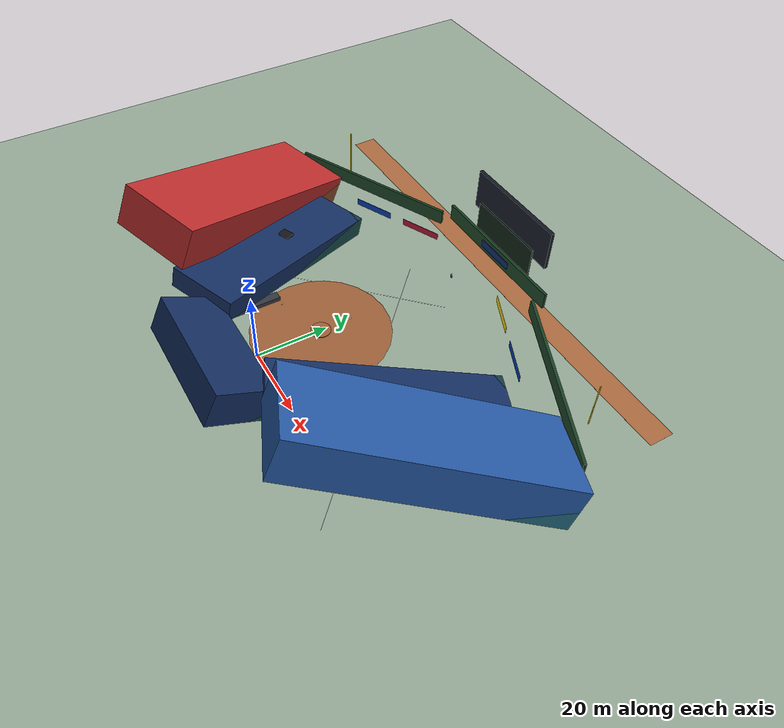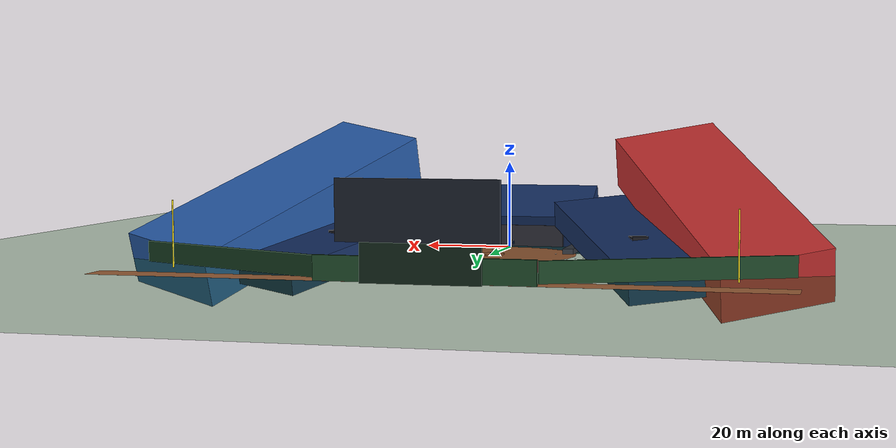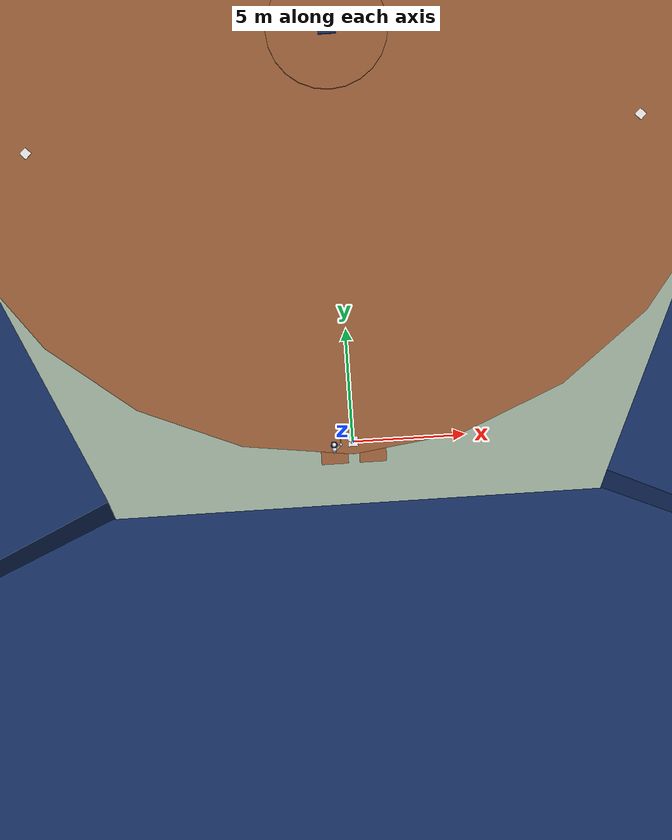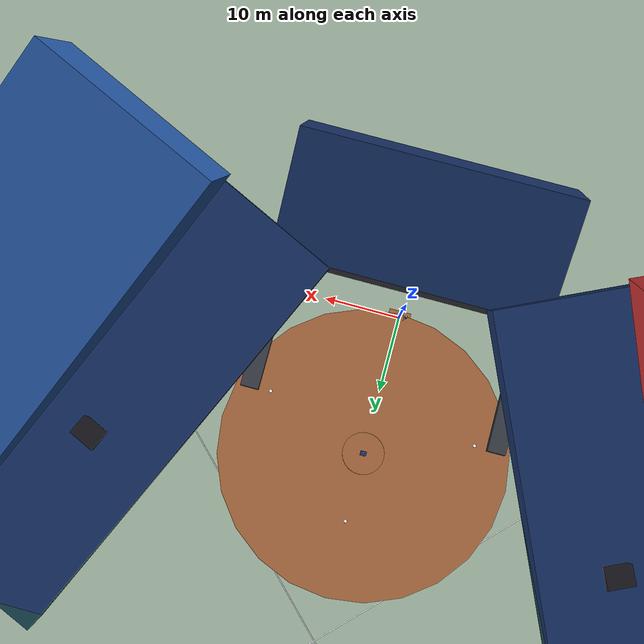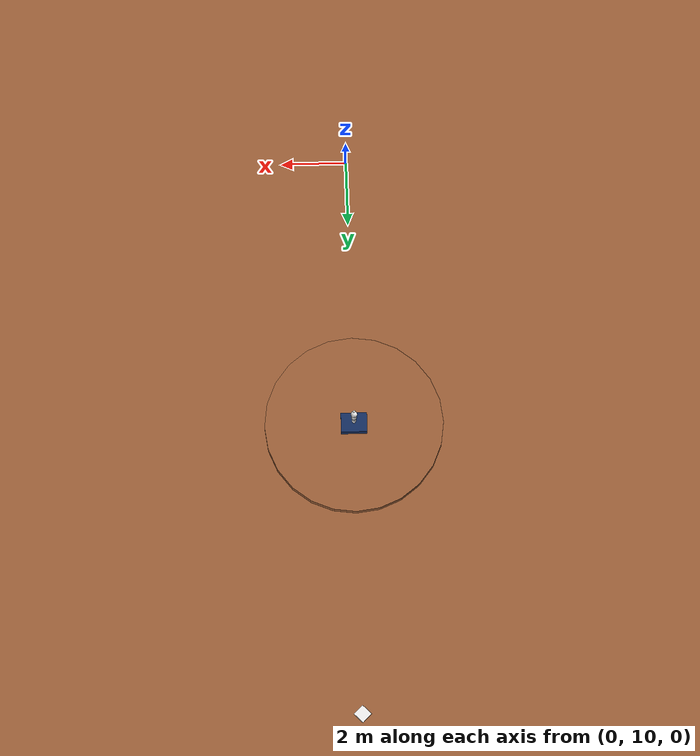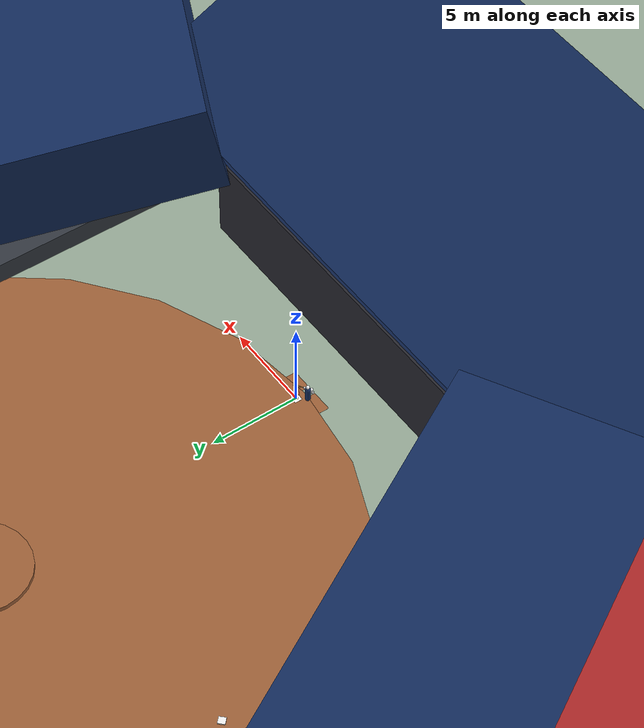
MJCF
<mujoco model="stadium_3d_baseball_pro">
  <compiler angle="degree" coordinate="local" inertiafromgeom="true"/>

  <option gravity="0 0 -9.81" timestep="0.002" integrator="RK4">
    <flag constraint="enable" energy="enable"/>
  </option>

  <default>
    <joint limited="false" damping="0.01"/>
    <geom condim="3" friction="0.5 0.1 0.1" solref="0.004 1" solimp="0.9 0.95 0.001" margin="0.001"/>
  </default>

  <asset>
    <!-- Sky & Textures -->
    <texture name="sky" type="skybox" builtin="gradient" rgb1="0.3 0.55 0.9" rgb2="0.05 0.12 0.3" width="512" height="512"/>
    <texture name="grass_tex" type="2d" builtin="checker" rgb1="0.12 0.44 0.12" rgb2="0.09 0.36 0.09" width="256" height="256"/>
    <texture name="dirt_tex" type="2d" builtin="flat" rgb1="0.62 0.38 0.22" width="128" height="128"/>
    <texture name="wood_tex" type="2d" builtin="flat" rgb1="0.82 0.62 0.32" width="128" height="128"/>

    <!-- Materials -->
    <material name="grass" texture="grass_tex" texrepeat="35 35" reflectance="0.05"/>
    <material name="infield_dirt_mat" texture="dirt_tex" reflectance="0.05"/>
    <material name="warning_track_mat" rgba="0.68 0.42 0.25 1" reflectance="0.05"/>
    <material name="wood" texture="wood_tex" reflectance="0.3"/>
    <material name="ball_mat" rgba="0.98 0.98 0.95 1" reflectance="0.4"/>
    <material name="plate_mat" rgba="0.95 0.95 0.95 1"/>
    <material name="foul_line_mat" rgba="1 1 1 0.9"/>
    <material name="foul_pole_mat" rgba="0.95 0.85 0.1 1"/>
    <material name="strike_zone_mat" rgba="1 0.15 0.15 0.22"/>

    <!-- Stadium Materials -->
    <material name="fence_mat" rgba="0.1 0.25 0.14 1"/>
    <material name="batters_eye_mat" rgba="0.05 0.12 0.08 1"/> <!-- Dark Matte Centerfield Batter's Eye -->
    <material name="backstop_mat" rgba="0.15 0.15 0.18 1"/>

    <!-- Outfield Sponsor Ad Billboards -->
    <material name="ad_board_samsung" rgba="0.02 0.22 0.65 1"/> <!-- Blue Samsung Ad -->
    <material name="ad_board_lg" rgba="0.65 0.08 0.2 1"/>      <!-- Red LG Ad -->
    <material name="ad_board_hyundai" rgba="0.05 0.15 0.4 1"/>  <!-- Navy Hyundai Ad -->
    <material name="ad_board_kakao" rgba="0.95 0.82 0.05 1"/>   <!-- Yellow Kakao Ad -->
    <material name="scoreboard_mat" rgba="0.08 0.1 0.14 1"/>   <!-- Giant Centerfield Scoreboard -->
    <material name="scoreboard_screen" rgba="0.15 0.85 0.35 1"/>

    <!-- Seating Bleachers & Entry Tunnels -->
    <material name="seats_blue" rgba="0.15 0.35 0.65 1"/>
    <material name="seats_navy" rgba="0.08 0.18 0.38 1"/>
    <material name="seats_red" rgba="0.75 0.18 0.18 1"/>
    <material name="concrete_concourse" rgba="0.45 0.48 0.52 1"/>
    <material name="entry_tunnel" rgba="0.08 0.08 0.1 1"/>     <!-- Dark Portal Interior -->
    <material name="dugout_roof" rgba="0.2 0.22 0.25 1"/>
  </asset>

  <worldbody>
    <!-- Lighting: Realistic Stadium Floodlights -->
    <light name="light_main" pos="0 25 35" dir="0 -0.5 -1" directional="true" diffuse="0.9 0.9 0.95" specular="0.3 0.3 0.3"/>
    <light name="light_left" pos="-35 50 30" dir="0.5 -0.5 -1" directional="true" diffuse="0.6 0.6 0.65"/>
    <light name="light_right" pos="35 50 30" dir="-0.5 -0.5 -1" directional="true" diffuse="0.6 0.6 0.65"/>

    <!-- Outfield Grass Surface -->
    <geom name="outfield_grass" type="plane" size="130 130 0.1" pos="0 35 0" material="grass"/>

    <!-- Infield Pitcher's Mound & Plate -->
    <geom name="pitcher_mound" type="cylinder" size="2.74 0.25" pos="0 18.44 0" material="infield_dirt_mat"/>
    <geom name="pitcher_rubber" type="box" size="0.30 0.07 0.02" pos="0 18.44 0.26" material="plate_mat"/>

    <!-- Infield Diamond Base Paths -->
    <geom name="path_home_1st" type="box" size="0.9 9.7 0.003" pos="9.7 9.7 0.003" euler="0 0 -45" material="infield_dirt_mat"/>
    <geom name="path_home_3rd" type="box" size="0.9 9.7 0.003" pos="-9.7 9.7 0.003" euler="0 0 45" material="infield_dirt_mat"/>
    <geom name="path_1st_2nd" type="box" size="0.9 9.7 0.003" pos="9.7 27.7 0.003" euler="0 0 45" material="infield_dirt_mat"/>
    <geom name="path_3rd_2nd" type="box" size="0.9 9.7 0.003" pos="-9.7 27.7 0.003" euler="0 0 -45" material="infield_dirt_mat"/>
    <geom name="infield_skin_dirt" type="cylinder" size="19.0 0.004" pos="0 18.44 0.004" material="infield_dirt_mat"/>

    <!-- Home Plate & Batter's Boxes -->
    <geom name="home_plate" type="box" size="0.216 0.216 0.01" pos="0 0 0.005" material="plate_mat"/>
    <geom name="left_batter_box" type="box" size="0.6 1.2 0.002" pos="-0.85 0.25 0.002" material="infield_dirt_mat"/>
    <geom name="right_batter_box" type="box" size="0.6 1.2 0.002" pos="0.85 0.25 0.002" material="infield_dirt_mat"/>

    <!-- Tee-Ball Stand -->
    <geom name="tee_stand_base" type="cylinder" size="0.1 0.02" pos="0 0 0.02" material="wood" contype="0" conaffinity="0"/>
    <geom name="tee_stand_pole" type="cylinder" size="0.02 0.48" pos="0 0 0.5" material="wood" contype="0" conaffinity="0"/>

    <!-- 3D Strike Zone Volume Visualization (Sensor Region) -->
    <geom name="strike_zone_box" type="box" size="0.216 0.01 0.30" pos="0 0 0.75" material="strike_zone_mat" contype="0" conaffinity="0"/>

    <!-- Bases (1st, 2nd, 3rd Base Bags) -->
    <geom name="base_1st" type="box" size="0.19 0.19 0.04" pos="13.72 13.72 0.04" euler="0 0 45" material="plate_mat"/>
    <geom name="base_2nd" type="box" size="0.19 0.19 0.04" pos="0 27.43 0.04" euler="0 0 45" material="plate_mat"/>
    <geom name="base_3rd" type="box" size="0.19 0.19 0.04" pos="-13.72 13.72 0.04" euler="0 0 45" material="plate_mat"/>

    <!-- 1st Base & 3rd Base Dugouts -->
    <geom name="dugout_1st_roof" type="box" size="1.2 8.0 0.6" pos="16.5 6.0 0.6" material="dugout_roof"/>
    <geom name="dugout_3rd_roof" type="box" size="1.2 8.0 0.6" pos="-16.5 6.0 0.6" material="dugout_roof"/>

    <!-- Outfield Warning Track & Curved Wall Fences -->
    <geom name="warning_track" type="box" size="70 3.5 0.004" pos="0 72 0.004" material="warning_track_mat"/>
    <geom name="fence_left_wall" type="box" size="26 0.4 2.2" pos="-45 60 2.2" euler="0 0 25" material="fence_mat"/>
    <geom name="fence_center_wall" type="box" size="22 0.4 2.5" pos="0 75 2.5" material="fence_mat"/>
    <geom name="fence_right_wall" type="box" size="26 0.4 2.2" pos="45 60 2.2" euler="0 0 -25" material="fence_mat"/>

    <!-- Outfield Sponsor Ad Billboards Mounted on Wall -->
    <geom name="ad_samsung" type="box" size="6.0 0.05 1.0" pos="-35 55.2 2.2" euler="0 0 25" material="ad_board_samsung"/>
    <geom name="ad_lg" type="box" size="6.0 0.05 1.0" pos="-20 62.2 2.2" euler="0 0 25" material="ad_board_lg"/>
    <geom name="ad_hyundai" type="box" size="6.0 0.05 1.2" pos="0 74.5 2.5" material="ad_board_hyundai"/>
    <geom name="ad_kakao" type="box" size="6.0 0.05 1.0" pos="20 62.2 2.2" euler="0 0 -25" material="ad_board_kakao"/>
    <geom name="ad_sponsor_right" type="box" size="6.0 0.05 1.0" pos="35 55.2 2.2" euler="0 0 -25" material="ad_board_samsung"/>

    <!-- Centerfield Giant Scoreboard & Batter's Eye -->
    <geom name="batters_eye" type="box" size="12 0.2 6.0" pos="0 77 6.0" material="batters_eye_mat"/>
    <geom name="jumbo_scoreboard" type="box" size="16 0.5 6.0" pos="0 79 14.0" material="scoreboard_mat"/>
    <geom name="scoreboard_display" type="box" size="14 0.05 4.5" pos="0 78.7 14.0" material="scoreboard_screen"/>

    <!-- Yellow Foul Poles (Left & Right Field) -->
    <geom name="foul_pole_left" type="cylinder" size="0.15 7.0" pos="-58 60 7.0" material="foul_pole_mat"/>
    <geom name="foul_pole_right" type="cylinder" size="0.15 7.0" pos="58 60 7.0" material="foul_pole_mat"/>

    <!-- Foul Lines -->
    <geom name="foul_line_left" type="box" size="0.06 43 0.003" pos="-21.5 21.5 0.003" euler="0 0 -45" material="foul_line_mat" contype="0" conaffinity="0"/>
    <geom name="foul_line_right" type="box" size="0.06 43 0.003" pos="21.5 21.5 0.003" euler="0 0 45" material="foul_line_mat" contype="0" conaffinity="0"/>

    <!-- Backstop Wall & Net Behind Home Plate -->
    <geom name="backstop_wall" type="box" size="12 0.5 2.5" pos="0 -4.0 2.5" material="backstop_mat"/>

    <!-- Multi-tiered Stadium Seating Stands & Concourse Entry Portals -->
    <!-- 1st Base Seating Bleachers -->
    <geom name="stand_1st_lower" type="box" size="10 30 3.0" pos="32 20 3.0" euler="-12 0 -25" material="seats_navy"/>
    <geom name="stand_1st_upper" type="box" size="12 35 6.0" pos="50 18 10.0" euler="-22 0 -25" material="seats_blue"/>
    <!-- Entry Portals / Tunnels on 1st Base Stand -->
    <geom name="portal_1st_1" type="box" size="1.8 1.5 2.2" pos="30 15 2.2" euler="0 0 -25" material="entry_tunnel"/>
    <geom name="portal_1st_2" type="box" size="1.8 1.5 2.2" pos="34 25 3.2" euler="0 0 -25" material="entry_tunnel"/>

    <!-- 3rd Base Seating Bleachers -->
    <geom name="stand_3rd_lower" type="box" size="10 30 3.0" pos="-32 20 3.0" euler="-12 0 25" material="seats_navy"/>
    <geom name="stand_3rd_upper" type="box" size="12 35 6.0" pos="-50 18 10.0" euler="-22 0 25" material="seats_red"/>
    <!-- Entry Portals / Tunnels on 3rd Base Stand -->
    <geom name="portal_3rd_1" type="box" size="1.8 1.5 2.2" pos="-30 15 2.2" euler="0 0 25" material="entry_tunnel"/>
    <geom name="portal_3rd_2" type="box" size="1.8 1.5 2.2" pos="-34 25 3.2" euler="0 0 25" material="entry_tunnel"/>

    <!-- Home Plate Grandstand & Press Box -->
    <geom name="stand_home_grand" type="box" size="18 8.0 5.0" pos="0 -12 6.0" euler="-25 0 0" material="seats_navy"/>
    <geom name="portal_home_center" type="box" size="2.5 1.5 2.5" pos="0 -10 3.5" material="entry_tunnel"/>

    <!-- ⚾ 투수 로봇 (8 DOF: 어깨3 + 팔꿈치2 + 손목2 + 릴리즈1) -->
    <body name="pitcher_base" pos="0 18.44 0.26">
      <geom type="box" size="0.4 0.3 0.25" mass="80.0" material="seats_navy"/>
      <body name="pitcher_shoulder" pos="0 0 1.2">
        <joint name="p_shoulder_pitch" type="hinge" axis="1 0 0" range="-30 210" damping="5.0" armature="0.5"/>
        <joint name="p_shoulder_yaw" type="hinge" axis="0 0 1" range="-45 45" damping="3.0" armature="0.3"/>
        <joint name="p_shoulder_roll" type="hinge" axis="0 1 0" range="-120 120" damping="3.0" armature="0.3"/>
        <geom name="p_shoulder_geom" type="sphere" size="0.1" material="plate_mat" mass="2.0"/>
        <geom name="p_upper_arm" type="capsule" size="0.07 0.225" pos="0 0 -0.225" material="plate_mat" mass="6.0"/>
        <body name="pitcher_elbow" pos="0 0 -0.45">
          <joint name="p_elbow_flex" type="hinge" axis="1 0 0" range="0 150" damping="3.0" armature="0.3"/>
          <joint name="p_elbow_pronate" type="hinge" axis="0 0 1" range="-90 90" damping="1.0" armature="0.1"/>
          <geom name="p_elbow_geom" type="sphere" size="0.08" material="plate_mat" mass="1.0"/>
          <geom name="p_forearm" type="capsule" size="0.06 0.2" pos="0 0 -0.2" material="plate_mat" mass="3.0"/>
          <body name="pitcher_wrist" pos="0 0 -0.4">
            <joint name="p_wrist_flex" type="hinge" axis="1 0 0" range="-70 70" damping="1.0" armature="0.1"/>
            <joint name="p_wrist_dev" type="hinge" axis="0 1 0" range="-30 30" damping="1.0" armature="0.1"/>
            <geom name="p_wrist_geom" type="sphere" size="0.06" material="plate_mat" mass="1.0"/>
            <!-- 볼은 별도 freejoint(baseball)이므로 투수 손 끝에는 릴리즈용 위치 마커만 둠 -->
            <site name="p_release_site" pos="0 0 -0.1" size="0.02" rgba="1 0 0 1"/>
          </body>
        </body>
      </body>
    </body>

    <!-- 🎥 멀티뷰 카메라들 -->
    <camera name="pitcher_cam" pos="0 20.0 2.0" xyaxes="-1 0 0 0 0 1" fovy="60"/>
    <camera name="catcher_cam" pos="0 -2.0 1.2" xyaxes="1 0 0 0 0 1" fovy="60"/>
    <camera name="broadcaster_cam" pos="0 -10.0 8.0" euler="65 0 0" fovy="50"/>
    <camera name="top_down_cam" pos="0 9.0 25.0" euler="0 0 0" fovy="70"/>

    <!-- Baseball Object (Free Joint, 3D Dynamic Sphere) -->
    <body name="baseball" pos="0 18.44 1.8">
      <freejoint name="ball_joint"/>
      <geom name="ball_geom" type="sphere" size="0.037" mass="0.145" material="ball_mat" condim="3" friction="0.3 0.05 0.05"/>
    </body>

    <!-- Realistic Batter Model: 9-DOF Robot (7-DOF Arm + 2-DOF Neck) -->
    <body name="batter_torso" pos="-0.85 -0.1 0">
      <geom name="torso_geom" type="capsule" size="0.15 0.3" pos="0 0 1.1" material="seats_navy" mass="20.0" contype="0" conaffinity="0"/>

      <!-- Neck & Head (2 DOF) -->
      <body name="neck" pos="0 0 1.6">
        <joint name="head_yaw" type="hinge" axis="0 0 1" range="-90 90" damping="0.5" armature="0.05"/>
        <joint name="head_pitch" type="hinge" axis="0 1 0" range="-45 45" damping="0.5" armature="0.05"/>
        <geom name="head_geom" type="sphere" size="0.1" material="plate_mat" mass="1.0" contype="0" conaffinity="0"/>
        <!-- 1인칭 카메라 (머리와 함께 회전) -->
        <camera name="batter_cam" pos="0 0 0" xyaxes="1 0 0 0 0 1" fovy="90"/>
      </body>

      <!-- Shoulder (3 DOF) -->
      <body name="shoulder" pos="0 -0.2 1.3">
        <joint name="shoulder_yaw" type="hinge" axis="0 0 1" range="-90 120" damping="2.0" armature="0.1"/>
        <joint name="shoulder_pitch" type="hinge" axis="1 0 0" range="-90 90" damping="2.0" armature="0.1"/>
        <joint name="shoulder_roll" type="hinge" axis="0 1 0" range="-90 90" damping="2.0" armature="0.1"/>
        <geom name="shoulder_geom" type="sphere" size="0.1" material="plate_mat" mass="3.0" contype="0" conaffinity="0"/>
        <geom name="upper_arm_geom" type="capsule" size="0.06" fromto="0 0 0  0 -0.1 -0.3" material="plate_mat" mass="3.0" contype="0" conaffinity="0"/>

        <!-- Elbow (1 DOF) -->
        <body name="elbow" pos="0 -0.1 -0.3">
          <joint name="elbow_flex" type="hinge" axis="0.53 -0.80 0.27" range="-150 150" damping="2.0" armature="0.1"/>
          <geom name="elbow_geom" type="sphere" size="0.08" material="plate_mat" mass="2.0" contype="0" conaffinity="0"/>
          <geom name="forearm_geom" type="capsule" size="0.05" fromto="0 0 0  0.3 0.3 0.3" material="plate_mat" mass="2.0" contype="0" conaffinity="0"/>

          <!-- Wrist (3 DOF) -->
          <body name="wrist" pos="0.3 0.3 0.3">
            <joint name="wrist_yaw" type="hinge" axis="0 0 1" range="-90 90" damping="1.0" armature="0.1"/>
            <joint name="wrist_pitch" type="hinge" axis="1 0 0" range="-90 90" damping="1.0" armature="0.1"/>
            <joint name="wrist_roll" type="hinge" axis="0 1 0" range="-90 90" damping="1.0" armature="0.1"/>
            <geom name="wrist_geom" type="sphere" size="0.06" material="plate_mat" mass="1.0" contype="0" conaffinity="0"/>

            <!-- Bat (Points UP and BACK in resting stance) -->
            <body name="bat" pos="0 0 0" euler="-45 0 0">
              <geom name="bat_knob" type="cylinder" size="0.025 0.015" pos="0 0 -0.015" material="wood" mass="0.05"/>
              <geom name="bat_handle" type="cylinder" size="0.014 0.2" pos="0 0 0.2" material="wood" mass="0.25"/>
              <geom name="bat_taper" type="capsule" size="0.024 0.1" pos="0 0 0.45" material="wood" mass="0.2"/>
              <geom name="bat_barrel" type="cylinder" size="0.034 0.25" pos="0 0 0.675" material="wood" mass="0.5" condim="3" friction="0.6 0.1 0.1"/>
            </body>
          </body>
        </body>
      </body>
    </body>

    <!-- Mobile Center Fielder Robot -->
    <body name="fielder_cf" pos="0 60 0.5">
      <joint name="cf_slide_x" type="slide" axis="1 0 0" damping="50" armature="1.0"/>
      <joint name="cf_slide_y" type="slide" axis="0 1 0" damping="50" armature="1.0"/>

      <!-- Base Chassis -->
      <geom name="cf_base" type="cylinder" size="0.3 0.2" material="seats_blue" mass="30.0" contype="0" conaffinity="0"/>
      <body name="cf_head_body" pos="0 0 1.0">
        <geom name="cf_head" type="sphere" size="0.15" material="plate_mat" mass="5.0" contype="0" conaffinity="0"/>
        <!-- 1인칭 카메라 (중견수 시야) -->
        <camera name="fielder_cam" pos="0 0 0" xyaxes="-1 0 0 0 0 1" fovy="90"/>
      </body>

      <!-- Simple Catching Arm / Glove -->
      <body name="cf_arm" pos="0 -0.3 0.8">
        <joint name="cf_arm_pitch" type="hinge" axis="1 0 0" range="-45 45" damping="2.0" armature="0.1"/>
        <geom name="cf_glove" type="sphere" size="0.2" material="wood" mass="2.0" condim="3" friction="1.0 0.5 0.5"/>
      </body>
    </body>
  </worldbody>

  <actuator>
    <!-- Batter Actuators -->
    <motor joint="shoulder_yaw" ctrlrange="-200 200" gear="2.0"/>
    <motor joint="shoulder_pitch" ctrlrange="-200 200" gear="2.0"/>
    <motor joint="shoulder_roll" ctrlrange="-200 200" gear="2.0"/>
    <motor joint="elbow_flex" ctrlrange="-150 150" gear="2.0"/>
    <motor joint="wrist_yaw" ctrlrange="-50 50" gear="1.0"/>
    <motor joint="wrist_pitch" ctrlrange="-50 50" gear="1.0"/>
    <motor joint="wrist_roll" ctrlrange="-50 50" gear="1.0"/>

    <!-- Pitcher Actuators -->
    <motor joint="p_shoulder_pitch" ctrlrange="-250 250" gear="2.5"/>
    <motor joint="p_shoulder_yaw" ctrlrange="-250 250" gear="2.5"/>
    <motor joint="p_shoulder_roll" ctrlrange="-250 250" gear="2.5"/>
    <motor joint="p_elbow_flex" ctrlrange="-150 150" gear="2.0"/>
    <motor joint="p_elbow_pronate" ctrlrange="-150 150" gear="2.0"/>
    <motor joint="p_wrist_flex" ctrlrange="-50 50" gear="1.0"/>
    <motor joint="p_wrist_dev" ctrlrange="-50 50" gear="1.0"/>

    <!-- Fielder Actuators -->
    <motor joint="cf_slide_x" ctrlrange="-200 200" gear="1.0"/>
    <motor joint="cf_slide_y" ctrlrange="-200 200" gear="1.0"/>
    <motor joint="cf_arm_pitch" ctrlrange="-50 50" gear="1.0"/>

    <!-- Neck Actuators -->
    <motor joint="head_yaw" ctrlrange="-50 50" gear="1.0"/>
    <motor joint="head_pitch" ctrlrange="-50 50" gear="1.0"/>
  </actuator>
</mujoco>
